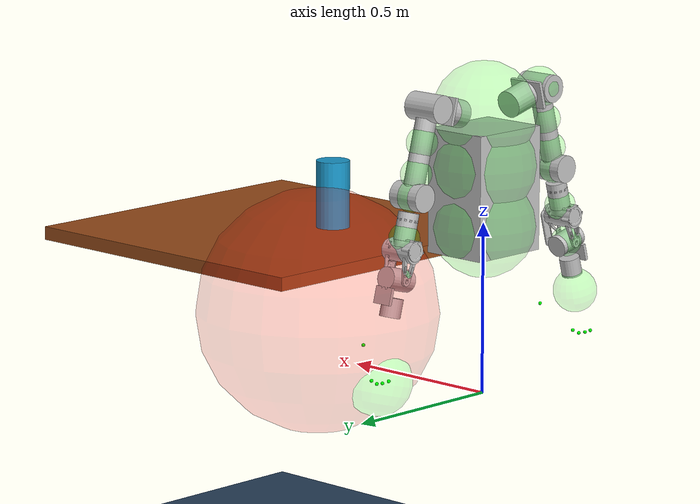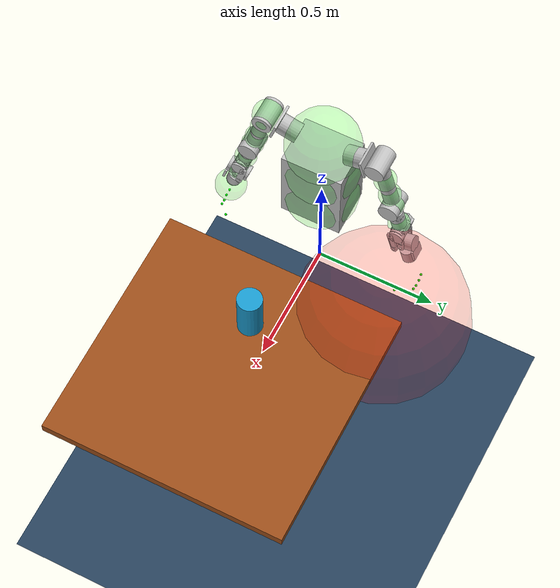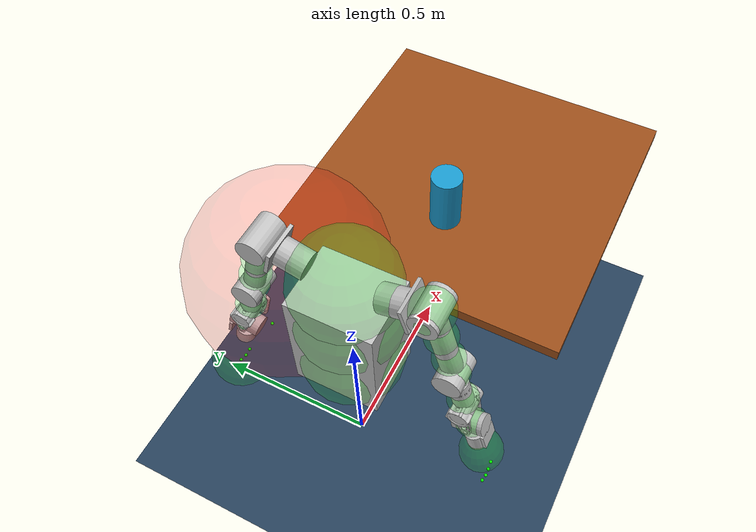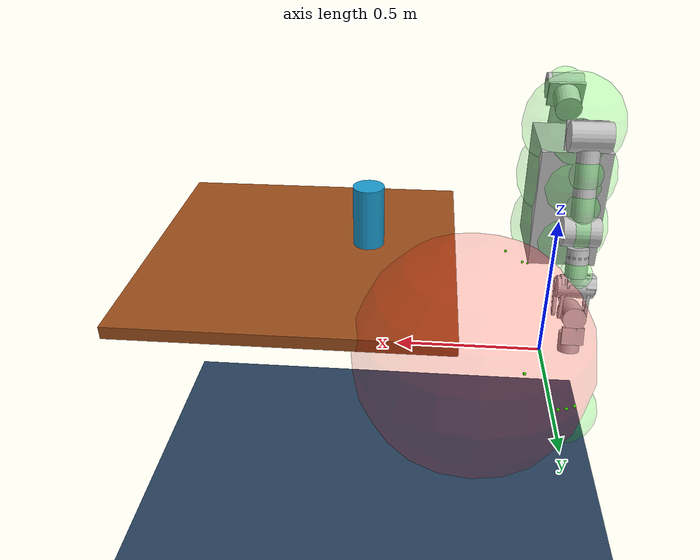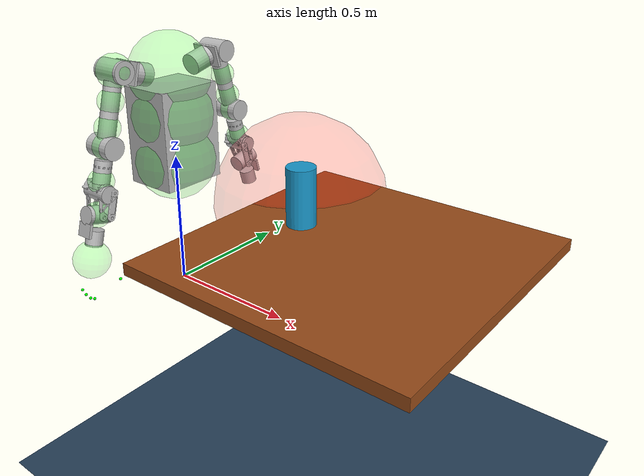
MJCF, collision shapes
<mujoco model="dual_arm_description">
  <compiler angle="radian" meshdir="meshes/"/>
<default>
<joint damping="0.1" frictionloss="0.02" armature="0.01"/>
</default>
  <asset>
    <texture type="skybox" builtin="gradient" rgb1=".3 .5 .7" rgb2="0 0 0" width="32" height="512"/>
    <texture name="body" type="cube" builtin="flat" mark="cross" width="128" height="128" rgb1="0.8 0.6 0.4" rgb2="0.8 0.6 0.4" markrgb="1 1 1" random="0.01"/>
    <material name="body" texture="body" texuniform="true" rgba="0.8 0.6 .4 1"/>
    <texture name="grid" type="2d" builtin="checker" width="512" height="512" rgb1=".1 .2 .3" rgb2=".2 .3 .4"/>
    <material name="grid" texture="grid" texrepeat="1 1" texuniform="true" reflectance=".2"/>
    <mesh name="waist_link2" file="waist_link2.STL"/>
    <mesh name="pelvis" file="pelvis.STL"/>
    <mesh name="l_link0" file="l_link0.STL"/>
    <mesh name="l_link1" file="l_link1.STL"/>
    <mesh name="l_link2" file="l_link2.STL"/>
    <mesh name="l_link3" file="l_link3.STL"/>
    <mesh name="l_link4" file="l_link4.STL"/>
    <mesh name="l_link5" file="l_link5.STL"/>
    <mesh name="l_link6" file="l_link6.STL"/>
    <mesh name="l_link7" file="l_link7.STL"/>
    <mesh name="r_link0" file="r_link0.STL"/>
    <mesh name="r_link1" file="r_link1.STL"/>
    <mesh name="r_link2" file="r_link2.STL"/>
    <mesh name="r_link3" file="r_link3.STL"/>
    <mesh name="r_link4" file="r_link4.STL"/>
    <mesh name="r_link5" file="r_link5.STL"/>
    <mesh name="r_link6" file="r_link6.STL"/>
    <mesh name="r_link7" file="r_link7.STL"/>
    <mesh name="L_hand_base_link" file="L_hand_base_link.STL"/>
    <mesh name="Link11_L" file="Link11_L.STL"/>
    <mesh name="Link12_L" file="Link12_L.STL"/>
    <mesh name="Link13_L" file="Link13_L.STL"/>
    <mesh name="Link14_L" file="Link14_L.STL"/>
    <mesh name="Link15_L" file="Link15_L.STL"/>
    <mesh name="Link16_L" file="Link16_L.STL"/>
    <mesh name="Link17_L" file="Link17_L.STL"/>
    <mesh name="Link18_L" file="Link18_L.STL"/>
    <mesh name="Link19_L" file="Link19_L.STL"/>
    <mesh name="Link20_L" file="Link20_L.STL"/>
    <mesh name="Link21_L" file="Link21_L.STL"/>
    <mesh name="Link22_L" file="Link22_L.STL"/>
    <mesh name="R_hand_base_link" file="R_hand_base_link.STL"/>
    <mesh name="Link11_R" file="Link11_R.STL"/>
    <mesh name="Link12_R" file="Link12_R.STL"/>
    <mesh name="Link13_R" file="Link13_R.STL"/>
    <mesh name="Link14_R" file="Link14_R.STL"/>
    <mesh name="Link15_R" file="Link15_R.STL"/>
    <mesh name="Link16_R" file="Link16_R.STL"/>
    <mesh name="Link17_R" file="Link17_R.STL"/>
    <mesh name="Link18_R" file="Link18_R.STL"/>
    <mesh name="Link19_R" file="Link19_R.STL"/>
    <mesh name="Link20_R" file="Link20_R.STL"/>
    <mesh name="Link21_R" file="Link21_R.STL"/>
    <mesh name="Link22_R" file="Link22_R.STL"/>
  </asset>
  <worldbody>
    <light directional="true" diffuse=".4 .4 .4" specular="0.1 0.1 0.1" pos="0 0 5.0" dir="0 0 -1" castshadow="false"/>
    <light directional="true" diffuse=".6 .6 .6" specular="0.2 0.2 0.2" pos="0 0 4" dir="0 0 -1"/>
    <geom name="floor" size="0 0 .05" type="plane" material="grid" condim="3" pos="0 0 -0.64"/>
    <geom pos="0 0 0.494" type="mesh" contype="0" conaffinity="0" group="1" density="0" rgba="0.752941 0.752941 0.752941 1" mesh="pelvis"/>

    <body name="waist_Z_link" pos="0 0 0.4185">
      <inertial pos="-0.0184353 -5.67729e-05 0.246076" quat="0.999902 -0.00143691 -0.0122534 -0.0066142" mass="1.004" diaginertia="0.243787 0.229688 0.0765298"/>
      <joint name="waist_Z_joint" pos="0 0 0" axis="0 0 1" type="slide" limited="true" range="-0.15 0" damping="1" frictionloss="1"/>
      <geom size="0.05 0.005" type="cylinder" contype="0" conaffinity="0" group="1" density="0" rgba="0 0 1 1"/>
      <geom size="0.35" pos="0.27 0.4 -0.15" contype="0" conaffinity="0" group="1" density="0" rgba="1 0 0 0.2"/>
      <geom size="0.15" pos="0 0 0.075" contype="0" conaffinity="0" group="1" density="0" rgba="0 1 0 0.2"/>
      <geom size="0.15" pos="0 0 0.25" contype="0" conaffinity="0" group="1" density="0" rgba="0 1 0 0.2"/>
      <geom size="0.15" pos="0 0 0.4" contype="0" conaffinity="0" group="1" density="0" rgba="0 1 0 0.2"/>
      <body name="waist_roll_link">
        <inertial pos="-0.018779 -0.000457 0.246485" quat="0.999923 -0.0020141 -0.0119165 -0.00266278" mass="0.0002" diaginertia="0.486018 0.457994 0.151779"/>
        <joint name="waist_roll_joint" pos="0 0 0" axis="1 0 0" limited="true" range="-0.25 0.25" damping="0.1" frictionloss="0.1"/>
        <geom size="0.05 0.005" type="cylinder" contype="0" conaffinity="0" group="1" density="0" rgba="0 1 0 1"/>
        <geom size="0.05 0.005" type="cylinder" contype="0" conaffinity="0" group="1" density="0" rgba="1 0 0 1"/>
        <body name="waist_link">
          <inertial pos="-0.0138181 -0.00161712 0.281568" quat="0.999936 0.0106773 0.00357206 -0.00106707" mass="17.7464" diaginertia="0.469112 0.405083 0.144421"/>
          <joint name="waist_yaw_joint" pos="0 0 0" axis="0 0 1" limited="true" range="-1 1" damping="0.5" frictionloss="0.5"/>
          <geom type="mesh" contype="0" conaffinity="0" group="1" density="0" rgba="0.752941 0.752941 0.752941 1" mesh="waist_link2"/>
          <geom size="0.1 0.125 0.18" pos="0 0 0.18" type="box" rgba="0.752941 0.752941 0.752941 1"/>
          <geom pos="0 0.15911 0.42582" quat="0.561136 -0.430264 0.430264 0.561135" type="mesh" contype="0" conaffinity="0" group="1" density="0" rgba="0.752941 0.752941 0.752941 1" mesh="l_link0"/>
          <geom size="0.04 0.04" pos="-5.17541e-10 0.139795 0.42063" quat="0.561136 -0.430264 0.430264 0.561135" type="cylinder" rgba="0.752941 0.752941 0.752941 1"/>
          <geom pos="0 -0.15911 0.42582" quat="0.561136 0.430264 0.430264 -0.561135" type="mesh" contype="0" conaffinity="0" group="1" density="0" rgba="0.752941 0.752941 0.752941 1" mesh="r_link0"/>
          <geom size="0.04 0.04" pos="-5.17541e-10 -0.139795 0.42063" quat="0.561136 0.430264 0.430264 -0.561135" type="cylinder" rgba="0.752941 0.752941 0.752941 1"/>
          <body name="left_link1" pos="1.98477e-09 0.233183 0.445723" quat="0.561136 -0.430264 0.430264 0.561135">
            <inertial pos="0 0.000721749 -0.0293916" quat="0.636817 0.771015 0 0" mass="0.223" diaginertia="0.000645868 0.000613654 0.000371214"/>
            <joint name="left_joint1" pos="0 0 0" axis="0 0 1" limited="true" range="-3.14159 0.785398"/>
            <geom type="mesh" contype="0" conaffinity="0" group="1" density="0" rgba="0.752941 0.752941 0.752941 1" mesh="l_link1"/>
            <geom size="0.04 0.055 0.005" pos="0 0 -0.05" type="box" rgba="0.752941 0.752941 0.752941 1"/>
            <geom size="0.03" contype="0" conaffinity="0" group="1" density="0" rgba="1 0 0 0.2"/>
            <body name="left_link2" quat="0.5 0.5 -0.5 0.5">
              <inertial pos="0 -0.000708386 0.00685282" quat="0.999907 -0.0136444 0 0" mass="1.228" diaginertia="0.00144385 0.00138023 0.00119762"/>
              <joint name="left_joint2" pos="0 0 0" axis="0 0 1" limited="true" range="-0.174 1.74533"/>
              <geom type="mesh" contype="0" conaffinity="0" group="1" density="0" rgba="0.75294 0.75294 0.75294 1" mesh="l_link2"/>
              <geom size="0.04 0.055" type="cylinder" rgba="0.75294 0.75294 0.75294 1"/>
              <geom size="0.045" pos="0 -0.1 0" contype="0" conaffinity="0" group="1" density="0" rgba="0 1 0 0.2"/>
              <geom size="0.045" pos="0 -0.19 0" contype="0" conaffinity="0" group="1" density="0" rgba="0 1 0 0.2"/>
              <body name="left_link3" pos="0 -0.253 0" quat="0.707107 0.707107 0 0">
                <inertial pos="0.000246865 0.00367099 -0.0814593" quat="0.999747 -0.0215363 0.000752683 0.00639425" mass="1.825" diaginertia="0.0143137 0.0141042 0.00139943"/>
                <joint name="left_joint3" pos="0 0 0" axis="0 0 1" limited="true" range="-2.26893 2.26893"/>
                <geom type="mesh" contype="0" conaffinity="0" group="1" density="0" rgba="0.752941 0.752941 0.752941 1" mesh="l_link3"/>
                <geom size="0.03 0.11" pos="0 0 -0.11" type="cylinder" rgba="0.752941 0.752941 0.752941 1"/>
                <geom size="0.045" contype="0" conaffinity="0" group="1" density="0" rgba="0 1 0 0.2"/>
                <body name="left_link4" quat="0.707107 -0.707107 0 0">
                  <inertial pos="0.0027427 -0.0215147 0.0060399" quat="0.998 -0.0436786 -0.00789949 0.0450194" mass="0.124" diaginertia="0.000351178 0.000311294 0.000234174"/>
                  <joint name="left_joint4" pos="0 0 0" axis="0 0 1" limited="true" range="-2.26893 0"/>
                  <geom type="mesh" contype="0" conaffinity="0" group="1" density="0" rgba="0.75294 0.75294 0.75294 1" mesh="l_link4"/>
                  <geom size="0.04 0.05" type="cylinder" rgba="0.75294 0.75294 0.75294 1"/>
                  <geom size="0.045" pos="0 -0.12 0" contype="0" conaffinity="0" group="1" density="0" rgba="0 1 0 0.2"/>
                  <body name="left_link5" pos="0 -0.2355 0" quat="0.707107 0.707107 0 0">
                    <inertial pos="0.000562443 0.00508696 -0.10869" quat="0.99326 -0.0740248 0.0155551 0.0878289" mass="1.011" diaginertia="0.00240413 0.00222064 0.000693931"/>
                    <joint name="left_joint5" pos="0 0 0" axis="0 0 1" limited="true" range="-2.26893 2.26893"/>
                    <geom type="mesh" contype="0" conaffinity="0" group="1" density="0" rgba="0.752941 0.752941 0.752941 1" mesh="l_link5"/>
                    <geom type="mesh" rgba="0.752941 0.752941 0.752941 1" mesh="l_link5"/>
                    <geom size="0.03 0.04" pos="0 0 -0.15" type="cylinder" rgba="0.752941 0.752941 0.752941 1"/>
                    <geom size="0.03 0.05" pos="0 0 -0.08" quat="0.707107 0.707107 0 0" type="cylinder" rgba="0.752941 0.752941 0.752941 1"/>
                    <geom size="0.045" contype="0" conaffinity="0" group="1" density="0" rgba="0 1 0 0.2"/>
                    <body name="left_link6" quat="0.5 -0.5 -0.5 -0.5">
                      <inertial pos="0 -0.005048 0.000947" quat="0.609644 0.792675 0 0" mass="0.487" diaginertia="0.00027 0.000253187 0.000204813"/>
                      <joint name="left_joint6" pos="0 0 0" axis="0 0 1" limited="true" range="-0.645772 0.645772"/>
                      <geom type="mesh" contype="0" conaffinity="0" group="1" density="0" rgba="0.75294 0.75294 0.75294 1" mesh="l_link6"/>
                      <geom size="0.032 0.045" quat="0.707107 0.707107 0 0" type="cylinder" rgba="0.75294 0.75294 0.75294 1"/>
                      <body name="left_link7" quat="0.5 -0.5 0.5 0.5">
                        <inertial pos="-0.00169331 -0.114321 -0.0101219" quat="0.483462 0.405826 -0.515595 0.579423" mass="0.420797" diaginertia="0.00209142 0.00196255 0.000446079"/>
                        <joint name="left_joint7" pos="0 0 0" axis="0 0 1" limited="true" range="-0.645772 0.645772"/>
                        <geom type="mesh" contype="0" conaffinity="0" group="1" density="0" rgba="0.75294 0.75294 0.75294 1" mesh="l_link7"/>
                        <geom size="0.03 0.025 0.005" pos="0 -0.05 0.04" type="box" rgba="0.75294 0.75294 0.75294 1"/>
                        <geom size="0.03 0.0275" pos="0 -0.08 0" quat="0.707107 0.707107 0 0" type="cylinder" rgba="0.75294 0.75294 0.75294 1"/>
                        <geom size="0.099" pos="0 -0.289 0" quat="0.707107 0.707107 0 0" contype="0" conaffinity="0" group="1" density="0" rgba="0 1 0 0.2"/>
                        <geom pos="0 -0.084 0" quat="0.707107 0 -0.707107 0" type="mesh" contype="0" conaffinity="0" group="1" density="0" rgba="0.1 0.1 0.1 1" mesh="L_hand_base_link"/>
                        <geom pos="-0.02045 -0.1531 -0.01696" quat="-1.29867e-06 -1.29868e-06 -0.707105 0.707108" type="mesh" contype="0" conaffinity="0" group="1" density="0" rgba="0.1 0.1 0.1 1" mesh="Link11_L"/>
                        <geom pos="-0.0304367 -0.1442 -0.0267843" quat="-0.0845956 3.1073e-07 -0.996415 0" type="mesh" contype="0" conaffinity="0" group="1" density="0" rgba="0.1 0.1 0.1 1" mesh="Link12_L"/>
                        <geom pos="-0.0740107 -0.178753 -0.0334252" quat="-0.0845956 3.1073e-07 -0.996415 0" type="mesh" contype="0" conaffinity="0" group="1" density="0" rgba="0.1 0.1 0.1 1" mesh="Link13_L"/>
                        <geom pos="-0.0941712 -0.188909 -0.0356559" quat="-0.0845956 3.1073e-07 -0.996415 0" type="mesh" contype="0" conaffinity="0" group="1" density="0" rgba="0.1 0.1 0.1 1" mesh="Link14_L"/>
                        <geom size="0.005" pos="-0.109631 -0.201909 -0.0342419" quat="-0.0845956 3.1073e-07 -0.996415 0" contype="0" conaffinity="0" group="1" density="0" rgba="0 1 0 1"/>
                        <geom pos="-0.032268 -0.22053 0.00028533" quat="0.706999 -0.0123409 -0.706999 -0.0123409" type="mesh" contype="0" conaffinity="0" group="1" density="0" rgba="0.1 0.1 0.1 1" mesh="Link15_L"/>
                        <geom pos="-0.0323868 -0.252586 -0.00213757" quat="0.706999 -0.0123409 -0.706999 -0.0123409" type="mesh" contype="0" conaffinity="0" group="1" density="0" rgba="0.1 0.1 0.1 1" mesh="Link16_L"/>
                        <geom size="0.005" pos="-0.0297853 -0.292702 -0.00713757" quat="0.706999 -0.0123409 -0.706999 -0.0123409" contype="0" conaffinity="0" group="1" density="0" rgba="0 1 0 1"/>
                        <geom pos="-0.01295 -0.2211 0.00028533" quat="0.707107 0 -0.707107 0" type="mesh" contype="0" conaffinity="0" group="1" density="0" rgba="0.1 0.1 0.1 1" mesh="Link17_L"/>
                        <geom pos="-0.01195 -0.253141 -0.00213757" quat="0.707107 0 -0.707107 0" type="mesh" contype="0" conaffinity="0" group="1" density="0" rgba="0.1 0.1 0.1 1" mesh="Link18_L"/>
                        <geom size="0.005" pos="-0.00795 -0.298141 -0.00713757" quat="0.707107 0 -0.707107 0" contype="0" conaffinity="0" group="1" density="0" rgba="0 1 0 1"/>
                        <geom pos="0.0062872 -0.22091 0.00028533" quat="0.706864 0.0185099 -0.706864 0.0185099" type="mesh" contype="0" conaffinity="0" group="1" density="0" rgba="0.1 0.1 0.1 1" mesh="Link19_L"/>
                        <geom pos="0.00896273 -0.252855 -0.00213757" quat="0.706864 0.0185099 -0.706864 0.0185099" type="mesh" contype="0" conaffinity="0" group="1" density="0" rgba="0.1 0.1 0.1 1" mesh="Link20_L"/>
                        <geom size="0.005" pos="0.0150507 -0.292591 -0.00413757" quat="0.706864 0.0185099 -0.706864 0.0185099" contype="0" conaffinity="0" group="1" density="0" rgba="0 1 0 1"/>
                        <geom pos="0.025488 -0.21971 0.00028533" quat="0.706138 0.0370072 -0.706138 0.0370072" type="mesh" contype="0" conaffinity="0" group="1" density="0" rgba="0.1 0.1 0.1 1" mesh="Link21_L"/>
                        <geom pos="0.0298317 -0.251471 -0.00213757" quat="0.706138 0.0370072 -0.706138 0.0370072" type="mesh" contype="0" conaffinity="0" group="1" density="0" rgba="0.1 0.1 0.1 1" mesh="Link22_L"/>
                        <geom size="0.005" pos="0.0371547 -0.282878 -0.00413757" quat="0.706138 0.0370072 -0.706138 0.0370072" contype="0" conaffinity="0" group="1" density="0" rgba="0 1 0 1"/>
                      </body>
                    </body>
                  </body>
                </body>
              </body>
            </body>
          </body>
          <body name="right_link1" pos="1.98477e-09 -0.233183 0.445723" quat="0.561136 0.430264 0.430264 -0.561135">
            <inertial pos="0 -0.000721749 -0.0293916" quat="0.771015 0.636817 0 0" mass="0.223" diaginertia="0.000645868 0.000613654 0.000371214"/>
            <joint name="right_joint1" pos="0 0 0" axis="0 0 1" limited="true" range="-0.785398 3.14159"/>
            <geom type="mesh" contype="0" conaffinity="0" group="1" density="0" rgba="0.752941 0.752941 0.752941 1" mesh="r_link1"/>
            <geom size="0.04 0.055 0.005" pos="0 0 -0.05" type="box" rgba="0.752941 0.752941 0.752941 1"/>
            <geom size="0.06" contype="0" conaffinity="0" group="1" density="0" rgba="0 1 0 0.2"/>
            <body name="right_link2" quat="0.5 -0.5 -0.5 -0.5">
              <inertial pos="0 0.000708386 0.00685282" quat="0.999907 0.0136444 0 0" mass="1.228" diaginertia="0.00144385 0.00138023 0.00119762"/>
              <joint name="right_joint2" pos="0 0 0" axis="0 0 1" limited="true" range="-1.74533 0.174"/>
              <geom type="mesh" contype="0" conaffinity="0" group="1" density="0" rgba="0.75294 0.75294 0.75294 1" mesh="r_link2"/>
              <geom size="0.04 0.055" type="cylinder" rgba="0.75294 0.75294 0.75294 1"/>
              <geom size="0.045" pos="0 0.1 0" contype="0" conaffinity="0" group="1" density="0" rgba="0 1 0 0.2"/>
              <geom size="0.045" pos="0 0.19 0" contype="0" conaffinity="0" group="1" density="0" rgba="0 1 0 0.2"/>
              <body name="right_link3" pos="0 0.253 0" quat="0.707107 -0.707107 0 0">
                <inertial pos="0.000246865 -0.00367099 -0.0814593" quat="0.999747 0.0215363 0.000752683 -0.00639425" mass="1.825" diaginertia="0.0143137 0.0141042 0.00139943"/>
                <joint name="right_joint3" pos="0 0 0" axis="0 0 1" limited="true" range="-2.26893 2.26893"/>
                <geom type="mesh" contype="0" conaffinity="0" group="1" density="0" rgba="0.752941 0.752941 0.752941 1" mesh="r_link3"/>
                <geom size="0.03 0.11" pos="0 0 -0.11" type="cylinder" rgba="0.752941 0.752941 0.752941 1"/>
                <geom size="0.045" contype="0" conaffinity="0" group="1" density="0" rgba="0 1 0 0.2"/>
                <body name="right_link4" quat="0.707107 0.707107 0 0">
                  <inertial pos="0.0027427 0.0215147 0.0060399" quat="0.998 0.0436786 -0.00789949 -0.0450194" mass="0.124" diaginertia="0.000351178 0.000311294 0.000234174"/>
                  <joint name="right_joint4" pos="0 0 0" axis="0 0 1" limited="true" range="0 2.26893"/>
                  <geom type="mesh" contype="0" conaffinity="0" group="1" density="0" rgba="0.75294 0.75294 0.75294 1" mesh="r_link4"/>
                  <geom size="0.04 0.05" type="cylinder" rgba="0.75294 0.75294 0.75294 1"/>
                  <geom size="0.045" pos="0 0.12 0" contype="0" conaffinity="0" group="1" density="0" rgba="0 1 0 0.2"/>
                  <body name="right_link5" pos="0 0.2355 0" quat="0.707107 -0.707107 0 0">
                    <inertial pos="0.000562443 -0.00508696 -0.10869" quat="0.99518 0.0760033 0.00667297 0.0616062" mass="1.011" diaginertia="0.00240135 0.00222375 0.000693603"/>
                    <joint name="right_joint5" pos="0 0 0" axis="0 0 1" limited="true" range="-2.26893 2.26893"/>
                    <geom type="mesh" contype="0" conaffinity="0" group="1" density="0" rgba="0.752941 0.752941 0.752941 1" mesh="r_link5"/>
                    <geom type="mesh" rgba="0.752941 0.752941 0.752941 1" mesh="r_link5"/>
                    <geom size="0.03 0.04" pos="0 0 -0.15" type="cylinder" rgba="0.752941 0.752941 0.752941 1"/>
                    <geom size="0.03 0.05" pos="0 0 -0.08" quat="0.707107 0.707107 0 0" type="cylinder" rgba="0.752941 0.752941 0.752941 1"/>
                    <geom size="0.045" contype="0" conaffinity="0" group="1" density="0" rgba="0 1 0 0.2"/>
                    <body name="right_link6" quat="0.5 0.5 -0.5 0.5">
                      <inertial pos="0 0.005048 0.000947" quat="0.792675 0.609644 0 0" mass="0.487" diaginertia="0.00027 0.000253187 0.000204813"/>
                      <joint name="right_joint6" pos="0 0 0" axis="0 0 1" limited="true" range="-0.645772 0.645772"/>
                      <geom type="mesh" contype="0" conaffinity="0" group="1" density="0" rgba="0.75294 0.75294 0.75294 1" mesh="r_link6"/>
                      <geom size="0.032 0.045" quat="0.707107 0.707107 0 0" type="cylinder" rgba="0.75294 0.75294 0.75294 1"/>
                      <body name="right_link7" quat="0.5 0.5 -0.5 0.5">
                        <inertial pos="0.00162219 -0.113997 -0.0103188" quat="0.592843 0.52724 -0.391427 0.466197" mass="0.42079" diaginertia="0.00206045 0.001933 0.000447866"/>
                        <joint name="right_joint7" pos="0 0 0" axis="0 0 1" limited="true" range="-0.645772 0.645772"/>
                        <geom type="mesh" contype="0" conaffinity="0" group="1" density="0" rgba="0.75294 0.75294 0.75294 1" mesh="r_link7"/>
                        <geom size="0.03 0.025 0.005" pos="0 -0.05 0.04" type="box" rgba="0.75294 0.75294 0.75294 1"/>
                        <geom size="0.03 0.0275" pos="0 -0.08 0" quat="0.707107 0.707107 0 0" type="cylinder" rgba="0.75294 0.75294 0.75294 1"/>
                        <geom size="0.065" pos="0 -0.159 0" quat="0.707107 0.707107 0 0" contype="0" conaffinity="0" group="1" density="0" rgba="0 1 0 0.2"/>
                        <geom pos="0 -0.084 0" quat="0.707107 0 -0.707107 0" type="mesh" contype="0" conaffinity="0" group="1" density="0" rgba="0.1 0.1 0.1 1" mesh="R_hand_base_link"/>
                        <geom pos="0.02045 -0.1531 -0.01696" quat="-1.29867e-06 -1.29868e-06 -0.707105 0.707108" type="mesh" contype="0" conaffinity="0" group="1" density="0" rgba="0.1 0.1 0.1 1" mesh="Link11_R"/>
                        <geom pos="0.0292599 -0.14385 -0.027852" quat="0 -0.990013 5.17831e-07 0.140973" type="mesh" contype="0" conaffinity="0" group="1" density="0" rgba="0.1 0.1 0.1 1" mesh="Link12_R"/>
                        <geom pos="0.0718016 -0.178403 -0.0393851" quat="0 -0.990013 5.17831e-07 0.140973" type="mesh" contype="0" conaffinity="0" group="1" density="0" rgba="0.1 0.1 0.1 1" mesh="Link13_R"/>
                        <geom pos="0.0915797 -0.188559 -0.0438846" quat="0 -0.990013 5.17831e-07 0.140973" type="mesh" contype="0" conaffinity="0" group="1" density="0" rgba="0.1 0.1 0.1 1" mesh="Link14_R"/>
                        <geom size="0.005" pos="0.1071 -0.201559 -0.0442306" quat="0 -0.990013 5.17831e-07 0.140973" contype="0" conaffinity="0" group="1" density="0" rgba="0 1 0 1"/>
                        <geom pos="0.032268 -0.22053 0.00028533" quat="0.0123358 -0.706999 -0.0123358 -0.706999" type="mesh" contype="0" conaffinity="0" group="1" density="0" rgba="0.1 0.1 0.1 1" mesh="Link15_R"/>
                        <geom pos="0.0323859 -0.252571 -0.00232847" quat="0.0123358 -0.706999 -0.0123358 -0.706999" type="mesh" contype="0" conaffinity="0" group="1" density="0" rgba="0.1 0.1 0.1 1" mesh="Link16_R"/>
                        <geom size="0.005" pos="0.0297837 -0.292687 -0.00732847" quat="0.0123358 -0.706999 -0.0123358 -0.706999" contype="0" conaffinity="0" group="1" density="0" rgba="0 1 0 1"/>
                        <geom pos="0.01295 -0.2211 0.00028533" quat="-2.59735e-06 -0.707107 2.59735e-06 -0.707107" type="mesh" contype="0" conaffinity="0" group="1" density="0" rgba="0.1 0.1 0.1 1" mesh="Link17_R"/>
                        <geom pos="0.0119498 -0.253141 -0.00213757" quat="-2.59735e-06 -0.707107 2.59735e-06 -0.707107" type="mesh" contype="0" conaffinity="0" group="1" density="0" rgba="0.1 0.1 0.1 1" mesh="Link18_R"/>
                        <geom size="0.005" pos="0.00794943 -0.298141 -0.00713757" quat="-2.59735e-06 -0.707107 2.59735e-06 -0.707107" contype="0" conaffinity="0" group="1" density="0" rgba="0 1 0 1"/>
                        <geom pos="-0.0062872 -0.22091 0.00028533" quat="0.0185215 0.706864 -0.0185215 0.706864" type="mesh" contype="0" conaffinity="0" group="1" density="0" rgba="0.1 0.1 0.1 1" mesh="Link19_R"/>
                        <geom pos="-0.00896377 -0.252855 -0.00213757" quat="0.0185215 0.706864 -0.0185215 0.706864" type="mesh" contype="0" conaffinity="0" group="1" density="0" rgba="0.1 0.1 0.1 1" mesh="Link20_R"/>
                        <geom size="0.005" pos="-0.015053 -0.29259 -0.00413757" quat="0.0185215 0.706864 -0.0185215 0.706864" contype="0" conaffinity="0" group="1" density="0" rgba="0 1 0 1"/>
                        <geom pos="-0.025488 -0.21971 0.00028533" quat="0.0369975 0.706138 -0.0369975 0.706138" type="mesh" contype="0" conaffinity="0" group="1" density="0" rgba="0.1 0.1 0.1 1" mesh="Link21_R"/>
                        <geom pos="-0.0298309 -0.251471 -0.00213757" quat="0.0369975 0.706138 -0.0369975 0.706138" type="mesh" contype="0" conaffinity="0" group="1" density="0" rgba="0.1 0.1 0.1 1" mesh="Link22_R"/>
                        <geom size="0.005" pos="-0.037153 -0.282878 -0.00413757" quat="0.0369975 0.706138 -0.0369975 0.706138" contype="0" conaffinity="0" group="1" density="0" rgba="0 1 0 1"/>
                      </body>
                    </body>
                  </body>
                </body>
              </body>
            </body>
          </body>
        </body>
      </body>
    </body>
        <body name="table" pos="0 0 0.4">
        <geom type="box" size="0.5 0.5 0.02" pos="0.815 0 -0.05" rgba="0.6 0.3 0.1 1"/>
    </body>

    <body name="cylinder" pos="0 0 0.4">
        <!-- 圆柱几何体 -->
        <geom type="cylinder" size="0.05 0.1" pos="0.6 0 0.1" rgba="0.1 0.6 0.8 1" mass="2.5" contype="1" conaffinity="1"/>
        <!-- 自由关节 -->
        <freejoint/>
    </body>

  </worldbody>
  <actuator>
    <motor name="waist_Z_joint" joint="waist_Z_joint" gear="1" ctrllimited="true" ctrlrange="-800 800" />
    <motor name="waist_roll_joint" joint="waist_roll_joint"  gear="1" ctrllimited="true" ctrlrange="-200 200" />
    <motor name="waist_yaw_joint" joint="waist_yaw_joint"  gear="1" ctrllimited="true" ctrlrange="-200 200" />
    <motor name="left_joint1" joint="left_joint1"  gear="1" ctrllimited="true" ctrlrange="-200 200" />
    <motor name="left_joint2" joint="left_joint2"  gear="1" ctrllimited="true" ctrlrange="-200 200" />
    <motor name="left_joint3" joint="left_joint3"  gear="1" ctrllimited="true" ctrlrange="-200 200" />
    <motor name="left_joint4" joint="left_joint4"  gear="1" ctrllimited="true" ctrlrange="-200 200" />
    <motor name="left_joint5" joint="left_joint5"  gear="1" ctrllimited="true" ctrlrange="-200 200" />
    <motor name="left_joint6" joint="left_joint6"  gear="1" ctrllimited="true" ctrlrange="-200 200" />
    <motor name="left_joint7" joint="left_joint7"  gear="1" ctrllimited="true" ctrlrange="-200 200" />
    <motor name="right_joint1" joint="right_joint1"  gear="1" ctrllimited="true" ctrlrange="-200 200" />
    <motor name="right_joint2" joint="right_joint2"  gear="1" ctrllimited="true" ctrlrange="-200 200" />
    <motor name="right_joint3" joint="right_joint3"  gear="1" ctrllimited="true" ctrlrange="-200 200" />
    <motor name="right_joint4" joint="right_joint4"  gear="1" ctrllimited="true" ctrlrange="-200 200" />
    <motor name="right_joint5" joint="right_joint5"  gear="1" ctrllimited="true" ctrlrange="-200 200" />
    <motor name="right_joint6" joint="right_joint6"  gear="1" ctrllimited="true" ctrlrange="-200 200" />
    <motor name="right_joint7" joint="right_joint7"  gear="1" ctrllimited="true" ctrlrange="-200 200" />
  </actuator>
    <sensor>
    <jointpos joint="waist_Z_joint" />
    <jointpos joint="waist_roll_joint" />
    <jointpos joint="waist_yaw_joint" />
    <jointpos joint="left_joint1" />
    <jointpos joint="left_joint2" />
    <jointpos joint="left_joint3" />
    <jointpos joint="left_joint4" />
    <jointpos joint="left_joint5" />
    <jointpos joint="left_joint6" />
    <jointpos joint="left_joint7" />
    <jointpos joint="right_joint1" />
    <jointpos joint="right_joint2" />
    <jointpos joint="right_joint3" />
    <jointpos joint="right_joint4" />
    <jointpos joint="right_joint5" />
    <jointpos joint="right_joint6" />
    <jointpos joint="right_joint7" />
  </sensor>

  <!-- sensors for velocity -->
  <sensor>
    <jointvel joint="waist_Z_joint" />
    <jointvel joint="waist_roll_joint" />
    <jointvel joint="waist_yaw_joint" />
    <jointvel joint="left_joint1" />
    <jointvel joint="left_joint2" />
    <jointvel joint="left_joint3" />
    <jointvel joint="left_joint4" />
    <jointvel joint="left_joint5" />
    <jointvel joint="left_joint6" />
    <jointvel joint="left_joint7" />
    <jointvel joint="right_joint1" />
    <jointvel joint="right_joint2" />
    <jointvel joint="right_joint3" />
    <jointvel joint="right_joint4" />
    <jointvel joint="right_joint5" />
    <jointvel joint="right_joint6" />
    <jointvel joint="right_joint7" />
  </sensor>
</mujoco>
